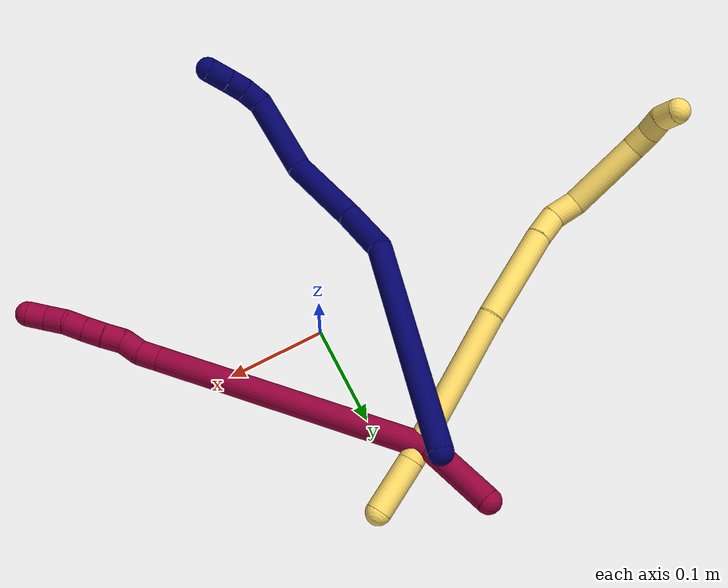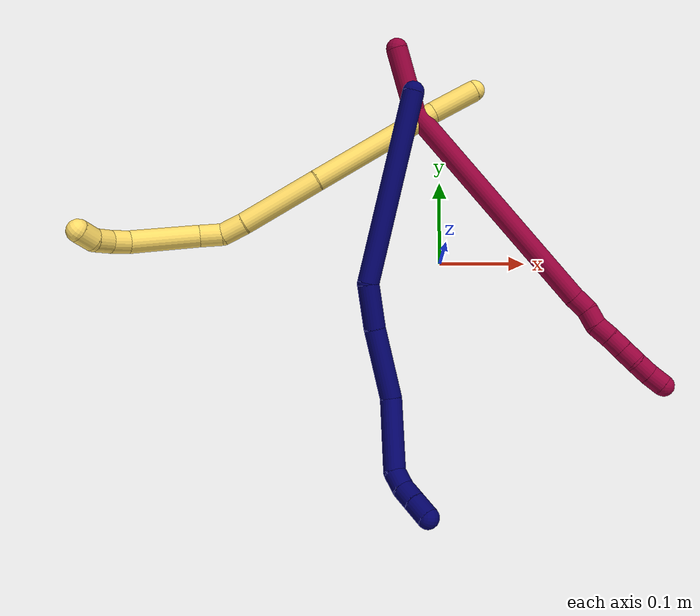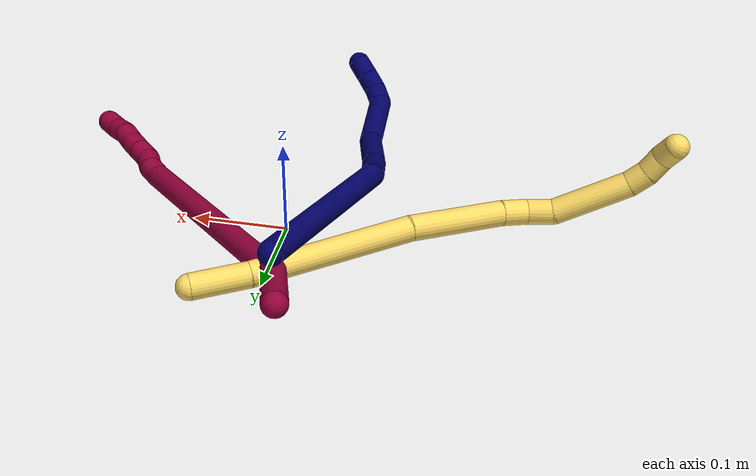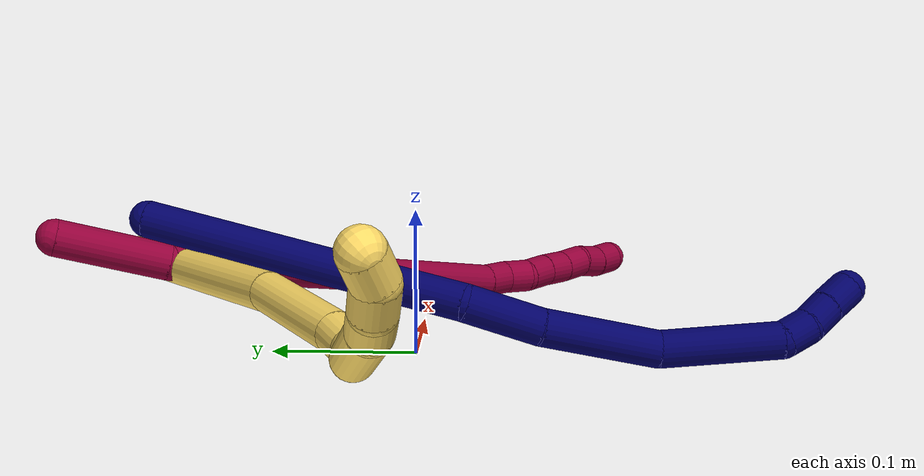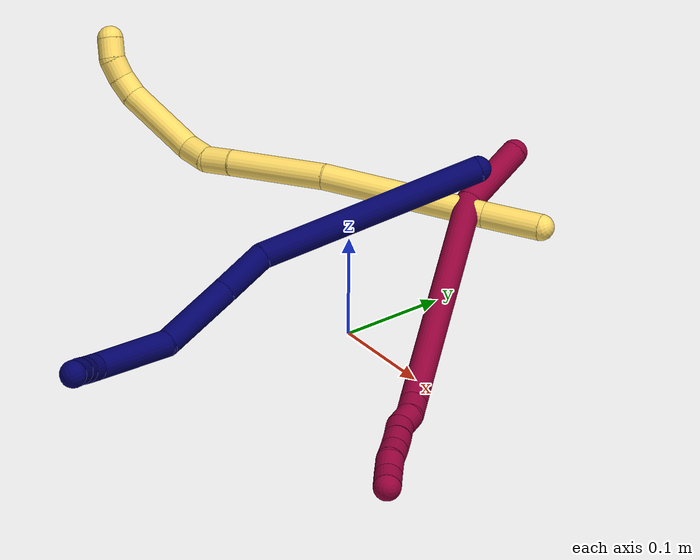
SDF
<sdf version="1.7">
 <world name="default">
  <model name="photoneo_s_sensor">
   <static>1</static>
   <pose>0 0 2 1.57079 1.57079 3.14159</pose>
   <link name="link">
    <inertial><mass>0.1</mass></inertial>
    <sensor name="sensor" type="depth">
     <update_rate>30</update_rate>
     <camera>
      <horizontal_fov>1.22</horizontal_fov>
      <image><width>1920</width><height>1200</height><format>B8G8R8</format></image>
      <clip><near>0.1</near><far>4</far></clip>
      <depth_camera><output>points</output></depth_camera>
     </camera>
     <plugin name="camera_plugin" filename="libgazebo_ros_depth_camera.so">
      <baseline>0.2</baseline>
      <alwaysOn>1</alwaysOn>
      <updateRate>0.0</updateRate>
      <cameraName>camera_ir</cameraName>
      <imageTopicName>/camera/color/image_raw</imageTopicName>
      <cameraInfoTopicName>/camera/color/camera_info</cameraInfoTopicName>
      <depthImageTopicName>/camera/depth/image_raw</depthImageTopicName>
      <depthImageCameraInfoTopicName>/camera/depth/camera_info</depthImageCameraInfoTopicName>
      <pointCloudTopicName>/camera/depth/points</pointCloudTopicName>
      <frameName>fr_optical</frameName>
      <pointCloudCutoff>0.1</pointCloudCutoff>
      <pointCloudCutoffMax>2.0</pointCloudCutoffMax>
      <distortionK1>0</distortionK1>
      <distortionK2>0</distortionK2>
      <distortionK3>0</distortionK3>
      <distortionT1>0</distortionT1>
      <distortionT2>0</distortionT2>
      <CxPrime>0</CxPrime>
      <Cx>0</Cx>
      <Cy>0</Cy>
      <focalLength>0</focalLength>
      <hackBaseline>0</hackBaseline>
     </plugin>
    </sensor>
   </link>
  </model>
  <model name="bin">
   <static>1</static>
   <link name="bottom">
    <collision name="collision-bottom">
     <pose>0 0 -0.01 0 -0 0</pose>
     <geometry><box><size>0.8 0.6 0.02</size></box></geometry>
     <surface>
      <friction><ode><mu>100</mu><mu2>100</mu2></ode></friction>
      <contact><collide_bitmask>65535</collide_bitmask></contact>
     </surface>
    </collision>
   </link>
   <link name="west_wall">
    <collision name="collision-west_wall">
     <pose>-0.41 0 0.1 0 -0 0</pose>
     <geometry><box><size>0.02 0.6 0.2</size></box></geometry>
     <surface>
      <friction><ode><mu>100</mu><mu2>100</mu2></ode></friction>
      <contact><collide_bitmask>65535</collide_bitmask></contact>
     </surface>
    </collision>
   </link>
   <link name="east_wall">
    <collision name="collision-east_wall">
     <pose>0.41 0 0.1 0 -0 0</pose>
     <geometry><box><size>0.02 0.6 0.2</size></box></geometry>
     <surface>
      <friction><ode><mu>100</mu><mu2>100</mu2></ode></friction>
      <contact><collide_bitmask>65535</collide_bitmask></contact>
     </surface>
    </collision>
   </link>
   <link name="south_wall">
    <collision name="collision-south_wall">
     <pose>0 -0.31 0.1 0 -0 0</pose>
     <geometry><box><size>0.8 0.02 0.2</size></box></geometry>
     <surface>
      <friction><ode><mu>100</mu><mu2>100</mu2></ode></friction>
      <contact><collide_bitmask>65535</collide_bitmask></contact>
     </surface>
    </collision>
   </link>
   <link name="north_wall">
    <collision name="collision-north_wall">
     <pose>0 0.31 0.1 0 -0 0</pose>
     <geometry><box><size>0.8 0.02 0.2</size></box></geometry>
     <surface>
      <friction><ode><mu>100</mu><mu2>100</mu2></ode></friction>
      <contact><collide_bitmask>65535</collide_bitmask></contact>
     </surface>
    </collision>
   </link>
  </model>
  <model name="5">
   <static>0</static>
   <link name="5">
    <collision name="collision-cylinder-e_1_1_4">
     <pose>-0.012069 -0.006325 -0.02455 2.88943 -0.444337 -2.11894</pose>
     <geometry><cylinder><radius>0.0125</radius><length>0.056156</length></cylinder></geometry>
     <surface>
      <friction><ode><mu>1.16</mu><mu2>1.16</mu2><slip1>0</slip1><slip2>0</slip2></ode></friction>
      <contact><ode><kp>1e+06</kp><kd>1</kd><max_vel>0</max_vel><min_depth>0.001</min_depth></ode></contact>
     </surface>
    </collision>
    <visual name="visual-cylinder-e_1_1_4">
     <pose>-0.012069 -0.006325 -0.02455 2.88943 -0.444337 -2.11894</pose>
     <geometry><cylinder><radius>0.0125</radius><length>0.056156</length></cylinder></geometry>
     <material><ambient>1 0.858824 0.4 1</ambient></material>
    </visual>
    <collision name="collision-cylinder-e_2_4_5">
     <pose>-0.057224 -0.036558 -0.117033 2.80319 -0.430649 -1.8154</pose>
     <geometry><cylinder><radius>0.0125</radius><length>0.158508</length></cylinder></geometry>
     <surface>
      <friction><ode><mu>1.16</mu><mu2>1.16</mu2><slip1>0</slip1><slip2>0</slip2></ode></friction>
      <contact><ode><kp>1e+06</kp><kd>1</kd><max_vel>0</max_vel><min_depth>0.001</min_depth></ode></contact>
     </surface>
    </collision>
    <visual name="visual-cylinder-e_2_4_5">
     <pose>-0.057224 -0.036558 -0.117033 2.80319 -0.430649 -1.8154</pose>
     <geometry><cylinder><radius>0.0125</radius><length>0.158508</length></cylinder></geometry>
     <material><ambient>1 0.858824 0.4 1</ambient></material>
    </visual>
    <collision name="collision-cylinder-e_3_5_6">
     <pose>-0.108166 -0.070092 -0.227711 2.9201 -0.386976 -2.10921</pose>
     <geometry><cylinder><radius>0.0125</radius><length>0.094628</length></cylinder></geometry>
     <surface>
      <friction><ode><mu>1.16</mu><mu2>1.16</mu2><slip1>0</slip1><slip2>0</slip2></ode></friction>
      <contact><ode><kp>1e+06</kp><kd>1</kd><max_vel>0</max_vel><min_depth>0.001</min_depth></ode></contact>
     </surface>
    </collision>
    <visual name="visual-cylinder-e_3_5_6">
     <pose>-0.108166 -0.070092 -0.227711 2.9201 -0.386976 -2.10921</pose>
     <geometry><cylinder><radius>0.0125</radius><length>0.094628</length></cylinder></geometry>
     <material><ambient>1 0.858824 0.4 1</ambient></material>
    </visual>
    <collision name="collision-cylinder-e_4_6_7">
     <pose>-0.131312 -0.081088 -0.282697 3.03008 -0.40567 -2.6116</pose>
     <geometry><cylinder><radius>0.0125</radius><length>0.026811</length></cylinder></geometry>
     <surface>
      <friction><ode><mu>1.16</mu><mu2>1.16</mu2><slip1>0</slip1><slip2>0</slip2></ode></friction>
      <contact><ode><kp>1e+06</kp><kd>1</kd><max_vel>0</max_vel><min_depth>0.001</min_depth></ode></contact>
     </surface>
    </collision>
    <visual name="visual-cylinder-e_4_6_7">
     <pose>-0.131312 -0.081088 -0.282697 3.03008 -0.40567 -2.6116</pose>
     <geometry><cylinder><radius>0.0125</radius><length>0.026811</length></cylinder></geometry>
     <material><ambient>1 0.858824 0.4 1</ambient></material>
    </visual>
    <collision name="collision-cylinder-e_5_7_8">
     <pose>-0.145942 -0.081909 -0.304041 -3.08126 -0.79732 2.99855</pose>
     <geometry><cylinder><radius>0.0125</radius><length>0.026107</length></cylinder></geometry>
     <surface>
      <friction><ode><mu>1.16</mu><mu2>1.16</mu2><slip1>0</slip1><slip2>0</slip2></ode></friction>
      <contact><ode><kp>1e+06</kp><kd>1</kd><max_vel>0</max_vel><min_depth>0.001</min_depth></ode></contact>
     </surface>
    </collision>
    <visual name="visual-cylinder-e_5_7_8">
     <pose>-0.145942 -0.081909 -0.304041 -3.08126 -0.79732 2.99855</pose>
     <geometry><cylinder><radius>0.0125</radius><length>0.026107</length></cylinder></geometry>
     <material><ambient>1 0.858824 0.4 1</ambient></material>
    </visual>
    <collision name="collision-cylinder-e_6_8_9">
     <pose>-0.185786 -0.092114 -0.333984 2.66519 -0.9154 -2.22563</pose>
     <geometry><cylinder><radius>0.0125</radius><length>0.076954</length></cylinder></geometry>
     <surface>
      <friction><ode><mu>1.16</mu><mu2>1.16</mu2><slip1>0</slip1><slip2>0</slip2></ode></friction>
      <contact><ode><kp>1e+06</kp><kd>1</kd><max_vel>0</max_vel><min_depth>0.001</min_depth></ode></contact>
     </surface>
    </collision>
    <visual name="visual-cylinder-e_6_8_9">
     <pose>-0.185786 -0.092114 -0.333984 2.66519 -0.9154 -2.22563</pose>
     <geometry><cylinder><radius>0.0125</radius><length>0.076954</length></cylinder></geometry>
     <material><ambient>1 0.858824 0.4 1</ambient></material>
    </visual>
    <collision name="collision-cylinder-e_7_9_10">
     <pose>-0.225154 -0.107193 -0.358134 2.22422 -1.01973 -1.6948</pose>
     <geometry><cylinder><radius>0.0125</radius><length>0.020807</length></cylinder></geometry>
     <surface>
      <friction><ode><mu>1.16</mu><mu2>1.16</mu2><slip1>0</slip1><slip2>0</slip2></ode></friction>
      <contact><ode><kp>1e+06</kp><kd>1</kd><max_vel>0</max_vel><min_depth>0.001</min_depth></ode></contact>
     </surface>
    </collision>
    <visual name="visual-cylinder-e_7_9_10">
     <pose>-0.225154 -0.107193 -0.358134 2.22422 -1.01973 -1.6948</pose>
     <geometry><cylinder><radius>0.0125</radius><length>0.020807</length></cylinder></geometry>
     <material><ambient>1 0.858824 0.4 1</ambient></material>
    </visual>
    <collision name="collision-cylinder-e_8_10_11">
     <pose>-0.242233 -0.117153 -0.362352 1.7303 -0.963667 -1.101</pose>
     <geometry><cylinder><radius>0.0125</radius><length>0.020007</length></cylinder></geometry>
     <surface>
      <friction><ode><mu>1.16</mu><mu2>1.16</mu2><slip1>0</slip1><slip2>0</slip2></ode></friction>
      <contact><ode><kp>1e+06</kp><kd>1</kd><max_vel>0</max_vel><min_depth>0.001</min_depth></ode></contact>
     </surface>
    </collision>
    <visual name="visual-cylinder-e_8_10_11">
     <pose>-0.242233 -0.117153 -0.362352 1.7303 -0.963667 -1.101</pose>
     <geometry><cylinder><radius>0.0125</radius><length>0.020007</length></cylinder></geometry>
     <material><ambient>1 0.858824 0.4 1</ambient></material>
    </visual>
    <collision name="collision-cylinder-e_9_11_2">
     <pose>-0.259965 -0.125474 -0.361693 1.04331 -1.25495 -0.789892</pose>
     <geometry><cylinder><radius>0.0125</radius><length>0.020022</length></cylinder></geometry>
     <surface>
      <friction><ode><mu>1.16</mu><mu2>1.16</mu2><slip1>0</slip1><slip2>0</slip2></ode></friction>
      <contact><ode><kp>1e+06</kp><kd>1</kd><max_vel>0</max_vel><min_depth>0.001</min_depth></ode></contact>
     </surface>
    </collision>
    <visual name="visual-cylinder-e_9_11_2">
     <pose>-0.259965 -0.125474 -0.361693 1.04331 -1.25495 -0.789892</pose>
     <geometry><cylinder><radius>0.0125</radius><length>0.020022</length></cylinder></geometry>
     <material><ambient>1 0.858824 0.4 1</ambient></material>
    </visual>
    <collision name="collision-sphere-2">
     <pose>-0.269481 -0.128161 -0.360128 0 -0 0</pose>
     <geometry><sphere><radius>0.0125</radius></sphere></geometry>
     <surface>
      <friction><ode><mu>1.16</mu><mu2>1.16</mu2><slip1>0</slip1><slip2>0</slip2></ode></friction>
      <contact><ode><kp>1e+06</kp><kd>1</kd><max_vel>0</max_vel><min_depth>0.001</min_depth></ode></contact>
     </surface>
    </collision>
    <visual name="visual-sphere-2">
     <pose>-0.269481 -0.128161 -0.360128 0 -0 0</pose>
     <geometry><sphere><radius>0.0125</radius></sphere></geometry>
     <material><ambient>1 0.858824 0.4 1</ambient></material>
    </visual>
    <collision name="collision-sphere-11">
     <pose>-0.250449 -0.122787 -0.363259 0 -0 0</pose>
     <geometry><sphere><radius>0.0125</radius></sphere></geometry>
     <surface>
      <friction><ode><mu>1.16</mu><mu2>1.16</mu2><slip1>0</slip1><slip2>0</slip2></ode></friction>
      <contact><ode><kp>1e+06</kp><kd>1</kd><max_vel>0</max_vel><min_depth>0.001</min_depth></ode></contact>
     </surface>
    </collision>
    <visual name="visual-sphere-11">
     <pose>-0.250449 -0.122787 -0.363259 0 -0 0</pose>
     <geometry><sphere><radius>0.0125</radius></sphere></geometry>
     <material><ambient>1 0.858824 0.4 1</ambient></material>
    </visual>
    <collision name="collision-sphere-10">
     <pose>-0.234018 -0.111518 -0.361446 0 -0 0</pose>
     <geometry><sphere><radius>0.0125</radius></sphere></geometry>
     <surface>
      <friction><ode><mu>1.16</mu><mu2>1.16</mu2><slip1>0</slip1><slip2>0</slip2></ode></friction>
      <contact><ode><kp>1e+06</kp><kd>1</kd><max_vel>0</max_vel><min_depth>0.001</min_depth></ode></contact>
     </surface>
    </collision>
    <visual name="visual-sphere-10">
     <pose>-0.234018 -0.111518 -0.361446 0 -0 0</pose>
     <geometry><sphere><radius>0.0125</radius></sphere></geometry>
     <material><ambient>1 0.858824 0.4 1</ambient></material>
    </visual>
    <collision name="collision-sphere-9">
     <pose>-0.216291 -0.102868 -0.354823 0 -0 0</pose>
     <geometry><sphere><radius>0.0125</radius></sphere></geometry>
     <surface>
      <friction><ode><mu>1.16</mu><mu2>1.16</mu2><slip1>0</slip1><slip2>0</slip2></ode></friction>
      <contact><ode><kp>1e+06</kp><kd>1</kd><max_vel>0</max_vel><min_depth>0.001</min_depth></ode></contact>
     </surface>
    </collision>
    <visual name="visual-sphere-9">
     <pose>-0.216291 -0.102868 -0.354823 0 -0 0</pose>
     <geometry><sphere><radius>0.0125</radius></sphere></geometry>
     <material><ambient>1 0.858824 0.4 1</ambient></material>
    </visual>
    <collision name="collision-sphere-4">
     <pose>-0.024139 -0.01265 -0.049099 0 -0 0</pose>
     <geometry><sphere><radius>0.0125</radius></sphere></geometry>
     <surface>
      <friction><ode><mu>1.16</mu><mu2>1.16</mu2><slip1>0</slip1><slip2>0</slip2></ode></friction>
      <contact><ode><kp>1e+06</kp><kd>1</kd><max_vel>0</max_vel><min_depth>0.001</min_depth></ode></contact>
     </surface>
    </collision>
    <visual name="visual-sphere-4">
     <pose>-0.024139 -0.01265 -0.049099 0 -0 0</pose>
     <geometry><sphere><radius>0.0125</radius></sphere></geometry>
     <material><ambient>1 0.858824 0.4 1</ambient></material>
    </visual>
    <collision name="collision-sphere-1">
     <geometry><sphere><radius>0.0125</radius></sphere></geometry>
     <surface>
      <friction><ode><mu>1.16</mu><mu2>1.16</mu2><slip1>0</slip1><slip2>0</slip2></ode></friction>
      <contact><ode><kp>1e+06</kp><kd>1</kd><max_vel>0</max_vel><min_depth>0.001</min_depth></ode></contact>
     </surface>
    </collision>
    <visual name="visual-sphere-1">
     <geometry><sphere><radius>0.0125</radius></sphere></geometry>
     <material><ambient>1 0.858824 0.4 1</ambient></material>
    </visual>
    <collision name="collision-sphere-8">
     <pose>-0.155281 -0.081359 -0.313144 0 -0 0</pose>
     <geometry><sphere><radius>0.0125</radius></sphere></geometry>
     <surface>
      <friction><ode><mu>1.16</mu><mu2>1.16</mu2><slip1>0</slip1><slip2>0</slip2></ode></friction>
      <contact><ode><kp>1e+06</kp><kd>1</kd><max_vel>0</max_vel><min_depth>0.001</min_depth></ode></contact>
     </surface>
    </collision>
    <visual name="visual-sphere-8">
     <pose>-0.155281 -0.081359 -0.313144 0 -0 0</pose>
     <geometry><sphere><radius>0.0125</radius></sphere></geometry>
     <material><ambient>1 0.858824 0.4 1</ambient></material>
    </visual>
    <collision name="collision-sphere-5">
     <pose>-0.09031 -0.060467 -0.184966 0 -0 0</pose>
     <geometry><sphere><radius>0.0125</radius></sphere></geometry>
     <surface>
      <friction><ode><mu>1.16</mu><mu2>1.16</mu2><slip1>0</slip1><slip2>0</slip2></ode></friction>
      <contact><ode><kp>1e+06</kp><kd>1</kd><max_vel>0</max_vel><min_depth>0.001</min_depth></ode></contact>
     </surface>
    </collision>
    <visual name="visual-sphere-5">
     <pose>-0.09031 -0.060467 -0.184966 0 -0 0</pose>
     <geometry><sphere><radius>0.0125</radius></sphere></geometry>
     <material><ambient>1 0.858824 0.4 1</ambient></material>
    </visual>
    <collision name="collision-sphere-6">
     <pose>-0.126022 -0.079718 -0.270456 0 -0 0</pose>
     <geometry><sphere><radius>0.0125</radius></sphere></geometry>
     <surface>
      <friction><ode><mu>1.16</mu><mu2>1.16</mu2><slip1>0</slip1><slip2>0</slip2></ode></friction>
      <contact><ode><kp>1e+06</kp><kd>1</kd><max_vel>0</max_vel><min_depth>0.001</min_depth></ode></contact>
     </surface>
    </collision>
    <visual name="visual-sphere-6">
     <pose>-0.126022 -0.079718 -0.270456 0 -0 0</pose>
     <geometry><sphere><radius>0.0125</radius></sphere></geometry>
     <material><ambient>1 0.858824 0.4 1</ambient></material>
    </visual>
    <collision name="collision-sphere-7">
     <pose>-0.136602 -0.082459 -0.294938 0 -0 0</pose>
     <geometry><sphere><radius>0.0125</radius></sphere></geometry>
     <surface>
      <friction><ode><mu>1.16</mu><mu2>1.16</mu2><slip1>0</slip1><slip2>0</slip2></ode></friction>
      <contact><ode><kp>1e+06</kp><kd>1</kd><max_vel>0</max_vel><min_depth>0.001</min_depth></ode></contact>
     </surface>
    </collision>
    <visual name="visual-sphere-7">
     <pose>-0.136602 -0.082459 -0.294938 0 -0 0</pose>
     <geometry><sphere><radius>0.0125</radius></sphere></geometry>
     <material><ambient>1 0.858824 0.4 1</ambient></material>
    </visual>
    <inertial>
     <pose>-0.112695 -0.06254 -0.209277 0 -0 0</pose>
     <mass>0.5</mass>
     <inertia>
      <ixx>-0.00055</ixx>
      <ixy>0</ixy>
      <ixz>0</ixz>
      <iyy>-0.000185</iyy>
      <iyz>0</iyz>
      <izz>0.000322</izz>
     </inertia>
    </inertial>
   </link>
   <pose>0.03741 0.193163 0.06335 -0.990582 0.614489 -0.50099</pose>
  </model>
  <model name="7">
   <static>0</static>
   <link name="7">
    <collision name="collision-cylinder-e_1_1_4">
     <pose>0.034962 -0.104996 -0.006233 1.63009 0.320905 0.340153</pose>
     <geometry><cylinder><radius>0.0125</radius><length>0.221679</length></cylinder></geometry>
     <surface>
      <friction><ode><mu>1.16</mu><mu2>1.16</mu2><slip1>0</slip1><slip2>0</slip2></ode></friction>
      <contact><ode><kp>1e+06</kp><kd>1</kd><max_vel>0</max_vel><min_depth>0.001</min_depth></ode></contact>
     </surface>
    </collision>
    <visual name="visual-cylinder-e_1_1_4">
     <pose>0.034962 -0.104996 -0.006233 1.63009 0.320905 0.340153</pose>
     <geometry><cylinder><radius>0.0125</radius><length>0.221679</length></cylinder></geometry>
     <material><ambient>0.003922 0 0.403922 1</ambient></material>
    </visual>
    <collision name="collision-cylinder-e_2_4_5">
     <pose>0.075541 -0.233902 -0.004017 1.23114 0.218019 0.154499</pose>
     <geometry><cylinder><radius>0.0125</radius><length>0.051947</length></cylinder></geometry>
     <surface>
      <friction><ode><mu>1.16</mu><mu2>1.16</mu2><slip1>0</slip1><slip2>0</slip2></ode></friction>
      <contact><ode><kp>1e+06</kp><kd>1</kd><max_vel>0</max_vel><min_depth>0.001</min_depth></ode></contact>
     </surface>
    </collision>
    <visual name="visual-cylinder-e_2_4_5">
     <pose>0.075541 -0.233902 -0.004017 1.23114 0.218019 0.154499</pose>
     <geometry><cylinder><radius>0.0125</radius><length>0.051947</length></cylinder></geometry>
     <material><ambient>0.003922 0 0.403922 1</ambient></material>
    </visual>
    <collision name="collision-cylinder-e_3_5_6">
     <pose>0.084639 -0.295786 0.018181 1.22342 0.085951 0.060311</pose>
     <geometry><cylinder><radius>0.0125</radius><length>0.081072</length></cylinder></geometry>
     <surface>
      <friction><ode><mu>1.16</mu><mu2>1.16</mu2><slip1>0</slip1><slip2>0</slip2></ode></friction>
      <contact><ode><kp>1e+06</kp><kd>1</kd><max_vel>0</max_vel><min_depth>0.001</min_depth></ode></contact>
     </surface>
    </collision>
    <visual name="visual-cylinder-e_3_5_6">
     <pose>0.084639 -0.295786 0.018181 1.22342 0.085951 0.060311</pose>
     <geometry><cylinder><radius>0.0125</radius><length>0.081072</length></cylinder></geometry>
     <material><ambient>0.003922 0 0.403922 1</ambient></material>
    </visual>
    <collision name="collision-cylinder-e_4_6_7">
     <pose>0.085589 -0.374093 0.032763 1.55015 -0.062615 -0.061336</pose>
     <geometry><cylinder><radius>0.0125</radius><length>0.080842</length></cylinder></geometry>
     <surface>
      <friction><ode><mu>1.16</mu><mu2>1.16</mu2><slip1>0</slip1><slip2>0</slip2></ode></friction>
      <contact><ode><kp>1e+06</kp><kd>1</kd><max_vel>0</max_vel><min_depth>0.001</min_depth></ode></contact>
     </surface>
    </collision>
    <visual name="visual-cylinder-e_4_6_7">
     <pose>0.085589 -0.374093 0.032763 1.55015 -0.062615 -0.061336</pose>
     <geometry><cylinder><radius>0.0125</radius><length>0.080842</length></cylinder></geometry>
     <material><ambient>0.003922 0 0.403922 1</ambient></material>
    </visual>
    <collision name="collision-cylinder-e_5_7_8">
     <pose>0.077607 -0.423145 0.035479 1.35809 -0.548657 -0.446685</pose>
     <geometry><cylinder><radius>0.0125</radius><length>0.02091</length></cylinder></geometry>
     <surface>
      <friction><ode><mu>1.16</mu><mu2>1.16</mu2><slip1>0</slip1><slip2>0</slip2></ode></friction>
      <contact><ode><kp>1e+06</kp><kd>1</kd><max_vel>0</max_vel><min_depth>0.001</min_depth></ode></contact>
     </surface>
    </collision>
    <visual name="visual-cylinder-e_5_7_8">
     <pose>0.077607 -0.423145 0.035479 1.35809 -0.548657 -0.446685</pose>
     <geometry><cylinder><radius>0.0125</radius><length>0.02091</length></cylinder></geometry>
     <material><ambient>0.003922 0 0.403922 1</ambient></material>
    </visual>
    <collision name="collision-cylinder-e_6_8_9">
     <pose>0.065022 -0.438731 0.039702 1.24232 -0.776911 -0.569833</pose>
     <geometry><cylinder><radius>0.0125</radius><length>0.020346</length></cylinder></geometry>
     <surface>
      <friction><ode><mu>1.16</mu><mu2>1.16</mu2><slip1>0</slip1><slip2>0</slip2></ode></friction>
      <contact><ode><kp>1e+06</kp><kd>1</kd><max_vel>0</max_vel><min_depth>0.001</min_depth></ode></contact>
     </surface>
    </collision>
    <visual name="visual-cylinder-e_6_8_9">
     <pose>0.065022 -0.438731 0.039702 1.24232 -0.776911 -0.569833</pose>
     <geometry><cylinder><radius>0.0125</radius><length>0.020346</length></cylinder></geometry>
     <material><ambient>0.003922 0 0.403922 1</ambient></material>
    </visual>
    <collision name="collision-cylinder-e_7_9_2">
     <pose>0.050131 -0.453634 0.045179 1.19871 -0.732526 -0.512577</pose>
     <geometry><cylinder><radius>0.0125</radius><length>0.023205</length></cylinder></geometry>
     <surface>
      <friction><ode><mu>1.16</mu><mu2>1.16</mu2><slip1>0</slip1><slip2>0</slip2></ode></friction>
      <contact><ode><kp>1e+06</kp><kd>1</kd><max_vel>0</max_vel><min_depth>0.001</min_depth></ode></contact>
     </surface>
    </collision>
    <visual name="visual-cylinder-e_7_9_2">
     <pose>0.050131 -0.453634 0.045179 1.19871 -0.732526 -0.512577</pose>
     <geometry><cylinder><radius>0.0125</radius><length>0.023205</length></cylinder></geometry>
     <material><ambient>0.003922 0 0.403922 1</ambient></material>
    </visual>
    <collision name="collision-sphere-2">
     <pose>0.042372 -0.46167 0.048315 0 -0 0</pose>
     <geometry><sphere><radius>0.0125</radius></sphere></geometry>
     <surface>
      <friction><ode><mu>1.16</mu><mu2>1.16</mu2><slip1>0</slip1><slip2>0</slip2></ode></friction>
      <contact><ode><kp>1e+06</kp><kd>1</kd><max_vel>0</max_vel><min_depth>0.001</min_depth></ode></contact>
     </surface>
    </collision>
    <visual name="visual-sphere-2">
     <pose>0.042372 -0.46167 0.048315 0 -0 0</pose>
     <geometry><sphere><radius>0.0125</radius></sphere></geometry>
     <material><ambient>0.003922 0 0.403922 1</ambient></material>
    </visual>
    <collision name="collision-sphere-9">
     <pose>0.05789 -0.445598 0.042043 0 -0 0</pose>
     <geometry><sphere><radius>0.0125</radius></sphere></geometry>
     <surface>
      <friction><ode><mu>1.16</mu><mu2>1.16</mu2><slip1>0</slip1><slip2>0</slip2></ode></friction>
      <contact><ode><kp>1e+06</kp><kd>1</kd><max_vel>0</max_vel><min_depth>0.001</min_depth></ode></contact>
     </surface>
    </collision>
    <visual name="visual-sphere-9">
     <pose>0.05789 -0.445598 0.042043 0 -0 0</pose>
     <geometry><sphere><radius>0.0125</radius></sphere></geometry>
     <material><ambient>0.003922 0 0.403922 1</ambient></material>
    </visual>
    <collision name="collision-sphere-4">
     <pose>0.069923 -0.209992 -0.012465 0 -0 0</pose>
     <geometry><sphere><radius>0.0125</radius></sphere></geometry>
     <surface>
      <friction><ode><mu>1.16</mu><mu2>1.16</mu2><slip1>0</slip1><slip2>0</slip2></ode></friction>
      <contact><ode><kp>1e+06</kp><kd>1</kd><max_vel>0</max_vel><min_depth>0.001</min_depth></ode></contact>
     </surface>
    </collision>
    <visual name="visual-sphere-4">
     <pose>0.069923 -0.209992 -0.012465 0 -0 0</pose>
     <geometry><sphere><radius>0.0125</radius></sphere></geometry>
     <material><ambient>0.003922 0 0.403922 1</ambient></material>
    </visual>
    <collision name="collision-sphere-1">
     <geometry><sphere><radius>0.0125</radius></sphere></geometry>
     <surface>
      <friction><ode><mu>1.16</mu><mu2>1.16</mu2><slip1>0</slip1><slip2>0</slip2></ode></friction>
      <contact><ode><kp>1e+06</kp><kd>1</kd><max_vel>0</max_vel><min_depth>0.001</min_depth></ode></contact>
     </surface>
    </collision>
    <visual name="visual-sphere-1">
     <geometry><sphere><radius>0.0125</radius></sphere></geometry>
     <material><ambient>0.003922 0 0.403922 1</ambient></material>
    </visual>
    <collision name="collision-sphere-8">
     <pose>0.072155 -0.431865 0.037362 0 -0 0</pose>
     <geometry><sphere><radius>0.0125</radius></sphere></geometry>
     <surface>
      <friction><ode><mu>1.16</mu><mu2>1.16</mu2><slip1>0</slip1><slip2>0</slip2></ode></friction>
      <contact><ode><kp>1e+06</kp><kd>1</kd><max_vel>0</max_vel><min_depth>0.001</min_depth></ode></contact>
     </surface>
    </collision>
    <visual name="visual-sphere-8">
     <pose>0.072155 -0.431865 0.037362 0 -0 0</pose>
     <geometry><sphere><radius>0.0125</radius></sphere></geometry>
     <material><ambient>0.003922 0 0.403922 1</ambient></material>
    </visual>
    <collision name="collision-sphere-5">
     <pose>0.081159 -0.257812 0.004432 0 -0 0</pose>
     <geometry><sphere><radius>0.0125</radius></sphere></geometry>
     <surface>
      <friction><ode><mu>1.16</mu><mu2>1.16</mu2><slip1>0</slip1><slip2>0</slip2></ode></friction>
      <contact><ode><kp>1e+06</kp><kd>1</kd><max_vel>0</max_vel><min_depth>0.001</min_depth></ode></contact>
     </surface>
    </collision>
    <visual name="visual-sphere-5">
     <pose>0.081159 -0.257812 0.004432 0 -0 0</pose>
     <geometry><sphere><radius>0.0125</radius></sphere></geometry>
     <material><ambient>0.003922 0 0.403922 1</ambient></material>
    </visual>
    <collision name="collision-sphere-6">
     <pose>0.088119 -0.33376 0.03193 0 -0 0</pose>
     <geometry><sphere><radius>0.0125</radius></sphere></geometry>
     <surface>
      <friction><ode><mu>1.16</mu><mu2>1.16</mu2><slip1>0</slip1><slip2>0</slip2></ode></friction>
      <contact><ode><kp>1e+06</kp><kd>1</kd><max_vel>0</max_vel><min_depth>0.001</min_depth></ode></contact>
     </surface>
    </collision>
    <visual name="visual-sphere-6">
     <pose>0.088119 -0.33376 0.03193 0 -0 0</pose>
     <geometry><sphere><radius>0.0125</radius></sphere></geometry>
     <material><ambient>0.003922 0 0.403922 1</ambient></material>
    </visual>
    <collision name="collision-sphere-7">
     <pose>0.08306 -0.414426 0.033596 0 -0 0</pose>
     <geometry><sphere><radius>0.0125</radius></sphere></geometry>
     <surface>
      <friction><ode><mu>1.16</mu><mu2>1.16</mu2><slip1>0</slip1><slip2>0</slip2></ode></friction>
      <contact><ode><kp>1e+06</kp><kd>1</kd><max_vel>0</max_vel><min_depth>0.001</min_depth></ode></contact>
     </surface>
    </collision>
    <visual name="visual-sphere-7">
     <pose>0.08306 -0.414426 0.033596 0 -0 0</pose>
     <geometry><sphere><radius>0.0125</radius></sphere></geometry>
     <material><ambient>0.003922 0 0.403922 1</ambient></material>
    </visual>
    <inertial>
     <pose>0.059129 -0.235898 0.010261 0 -0 0</pose>
     <mass>0.5</mass>
     <inertia>
      <ixx>0.001224</ixx>
      <ixy>0</ixy>
      <ixz>0</ixz>
      <iyy>0.000325</iyy>
      <iyz>0</iyz>
      <izz>0.00069</izz>
     </inertia>
    </inertial>
   </link>
   <pose>-0.034779 0.175024 0.098513 -3.08018 0.970019 -3.09016</pose>
  </model>
  <model name="8">
   <static>0</static>
   <link name="8">
    <collision name="collision-cylinder-e_1_1_4">
     <pose>-0.015359 -0.031878 0.013649 1.16626 -0.416939 -0.277299</pose>
     <geometry><cylinder><radius>0.0125</radius><length>0.075852</length></cylinder></geometry>
     <surface>
      <friction><ode><mu>1.16</mu><mu2>1.16</mu2><slip1>0</slip1><slip2>0</slip2></ode></friction>
      <contact><ode><kp>1e+06</kp><kd>1</kd><max_vel>0</max_vel><min_depth>0.001</min_depth></ode></contact>
     </surface>
    </collision>
    <visual name="visual-cylinder-e_1_1_4">
     <pose>-0.015359 -0.031878 0.013649 1.16626 -0.416939 -0.277299</pose>
     <geometry><cylinder><radius>0.0125</radius><length>0.075852</length></cylinder></geometry>
     <material><ambient>0.584314 0 0.227451 1</ambient></material>
    </visual>
    <collision name="collision-cylinder-e_2_4_5">
     <pose>-0.052486 -0.163661 0.12474 0.797868 -0.154735 -0.065334</pose>
     <geometry><cylinder><radius>0.0125</radius><length>0.282489</length></cylinder></geometry>
     <surface>
      <friction><ode><mu>1.16</mu><mu2>1.16</mu2><slip1>0</slip1><slip2>0</slip2></ode></friction>
      <contact><ode><kp>1e+06</kp><kd>1</kd><max_vel>0</max_vel><min_depth>0.001</min_depth></ode></contact>
     </surface>
    </collision>
    <visual name="visual-cylinder-e_2_4_5">
     <pose>-0.052486 -0.163661 0.12474 0.797868 -0.154735 -0.065334</pose>
     <geometry><cylinder><radius>0.0125</radius><length>0.282489</length></cylinder></geometry>
     <material><ambient>0.584314 0 0.227451 1</ambient></material>
    </visual>
    <collision name="collision-cylinder-e_3_5_6">
     <pose>-0.076608 -0.269553 0.230533 0.622206 -0.225203 -0.072688</pose>
     <geometry><cylinder><radius>0.0125</radius><length>0.021081</length></cylinder></geometry>
     <surface>
      <friction><ode><mu>1.16</mu><mu2>1.16</mu2><slip1>0</slip1><slip2>0</slip2></ode></friction>
      <contact><ode><kp>1e+06</kp><kd>1</kd><max_vel>0</max_vel><min_depth>0.001</min_depth></ode></contact>
     </surface>
    </collision>
    <visual name="visual-cylinder-e_3_5_6">
     <pose>-0.076608 -0.269553 0.230533 0.622206 -0.225203 -0.072688</pose>
     <geometry><cylinder><radius>0.0125</radius><length>0.021081</length></cylinder></geometry>
     <material><ambient>0.584314 0 0.227451 1</ambient></material>
    </visual>
    <collision name="collision-cylinder-e_4_6_7">
     <pose>-0.083423 -0.282255 0.244974 0.833837 -0.457355 -0.205435</pose>
     <geometry><cylinder><radius>0.0125</radius><length>0.020208</length></cylinder></geometry>
     <surface>
      <friction><ode><mu>1.16</mu><mu2>1.16</mu2><slip1>0</slip1><slip2>0</slip2></ode></friction>
      <contact><ode><kp>1e+06</kp><kd>1</kd><max_vel>0</max_vel><min_depth>0.001</min_depth></ode></contact>
     </surface>
    </collision>
    <visual name="visual-cylinder-e_4_6_7">
     <pose>-0.083423 -0.282255 0.244974 0.833837 -0.457355 -0.205435</pose>
     <geometry><cylinder><radius>0.0125</radius><length>0.020208</length></cylinder></geometry>
     <material><ambient>0.584314 0 0.227451 1</ambient></material>
    </visual>
    <collision name="collision-cylinder-e_5_7_8">
     <pose>-0.090142 -0.294004 0.259528 0.53685 -0.225307 -0.062217</pose>
     <geometry><cylinder><radius>0.0125</radius><length>0.020204</length></cylinder></geometry>
     <surface>
      <friction><ode><mu>1.16</mu><mu2>1.16</mu2><slip1>0</slip1><slip2>0</slip2></ode></friction>
      <contact><ode><kp>1e+06</kp><kd>1</kd><max_vel>0</max_vel><min_depth>0.001</min_depth></ode></contact>
     </surface>
    </collision>
    <visual name="visual-cylinder-e_5_7_8">
     <pose>-0.090142 -0.294004 0.259528 0.53685 -0.225307 -0.062217</pose>
     <geometry><cylinder><radius>0.0125</radius><length>0.020204</length></cylinder></geometry>
     <material><ambient>0.584314 0 0.227451 1</ambient></material>
    </visual>
    <collision name="collision-cylinder-e_6_8_9">
     <pose>-0.094767 -0.304735 0.275945 0.621339 -0.237471 -0.076567</pose>
     <geometry><cylinder><radius>0.0125</radius><length>0.020134</length></cylinder></geometry>
     <surface>
      <friction><ode><mu>1.16</mu><mu2>1.16</mu2><slip1>0</slip1><slip2>0</slip2></ode></friction>
      <contact><ode><kp>1e+06</kp><kd>1</kd><max_vel>0</max_vel><min_depth>0.001</min_depth></ode></contact>
     </surface>
    </collision>
    <visual name="visual-cylinder-e_6_8_9">
     <pose>-0.094767 -0.304735 0.275945 0.621339 -0.237471 -0.076567</pose>
     <geometry><cylinder><radius>0.0125</radius><length>0.020134</length></cylinder></geometry>
     <material><ambient>0.584314 0 0.227451 1</ambient></material>
    </visual>
    <collision name="collision-cylinder-e_7_9_10">
     <pose>-0.100141 -0.315411 0.29204 0.54907 -0.305271 -0.086598</pose>
     <geometry><cylinder><radius>0.0125</radius><length>0.020007</length></cylinder></geometry>
     <surface>
      <friction><ode><mu>1.16</mu><mu2>1.16</mu2><slip1>0</slip1><slip2>0</slip2></ode></friction>
      <contact><ode><kp>1e+06</kp><kd>1</kd><max_vel>0</max_vel><min_depth>0.001</min_depth></ode></contact>
     </surface>
    </collision>
    <visual name="visual-cylinder-e_7_9_10">
     <pose>-0.100141 -0.315411 0.29204 0.54907 -0.305271 -0.086598</pose>
     <geometry><cylinder><radius>0.0125</radius><length>0.020007</length></cylinder></geometry>
     <material><ambient>0.584314 0 0.227451 1</ambient></material>
    </visual>
    <collision name="collision-cylinder-e_8_10_11">
     <pose>-0.10394 -0.326939 0.307703 0.716174 -0.079245 -0.029669</pose>
     <geometry><cylinder><radius>0.0125</radius><length>0.020015</length></cylinder></geometry>
     <surface>
      <friction><ode><mu>1.16</mu><mu2>1.16</mu2><slip1>0</slip1><slip2>0</slip2></ode></friction>
      <contact><ode><kp>1e+06</kp><kd>1</kd><max_vel>0</max_vel><min_depth>0.001</min_depth></ode></contact>
     </surface>
    </collision>
    <visual name="visual-cylinder-e_8_10_11">
     <pose>-0.10394 -0.326939 0.307703 0.716174 -0.079245 -0.029669</pose>
     <geometry><cylinder><radius>0.0125</radius><length>0.020015</length></cylinder></geometry>
     <material><ambient>0.584314 0 0.227451 1</ambient></material>
    </visual>
    <collision name="collision-cylinder-e_9_11_2">
     <pose>-0.106321 -0.33852 0.323729 0.534398 -0.159455 -0.043736</pose>
     <geometry><cylinder><radius>0.0125</radius><length>0.02001</length></cylinder></geometry>
     <surface>
      <friction><ode><mu>1.16</mu><mu2>1.16</mu2><slip1>0</slip1><slip2>0</slip2></ode></friction>
      <contact><ode><kp>1e+06</kp><kd>1</kd><max_vel>0</max_vel><min_depth>0.001</min_depth></ode></contact>
     </surface>
    </collision>
    <visual name="visual-cylinder-e_9_11_2">
     <pose>-0.106321 -0.33852 0.323729 0.534398 -0.159455 -0.043736</pose>
     <geometry><cylinder><radius>0.0125</radius><length>0.02001</length></cylinder></geometry>
     <material><ambient>0.584314 0 0.227451 1</ambient></material>
    </visual>
    <collision name="collision-sphere-2">
     <pose>-0.10791 -0.343551 0.33223 0 -0 0</pose>
     <geometry><sphere><radius>0.0125</radius></sphere></geometry>
     <surface>
      <friction><ode><mu>1.16</mu><mu2>1.16</mu2><slip1>0</slip1><slip2>0</slip2></ode></friction>
      <contact><ode><kp>1e+06</kp><kd>1</kd><max_vel>0</max_vel><min_depth>0.001</min_depth></ode></contact>
     </surface>
    </collision>
    <visual name="visual-sphere-2">
     <pose>-0.10791 -0.343551 0.33223 0 -0 0</pose>
     <geometry><sphere><radius>0.0125</radius></sphere></geometry>
     <material><ambient>0.584314 0 0.227451 1</ambient></material>
    </visual>
    <collision name="collision-sphere-11">
     <pose>-0.104732 -0.333489 0.315228 0 -0 0</pose>
     <geometry><sphere><radius>0.0125</radius></sphere></geometry>
     <surface>
      <friction><ode><mu>1.16</mu><mu2>1.16</mu2><slip1>0</slip1><slip2>0</slip2></ode></friction>
      <contact><ode><kp>1e+06</kp><kd>1</kd><max_vel>0</max_vel><min_depth>0.001</min_depth></ode></contact>
     </surface>
    </collision>
    <visual name="visual-sphere-11">
     <pose>-0.104732 -0.333489 0.315228 0 -0 0</pose>
     <geometry><sphere><radius>0.0125</radius></sphere></geometry>
     <material><ambient>0.584314 0 0.227451 1</ambient></material>
    </visual>
    <collision name="collision-sphere-10">
     <pose>-0.103148 -0.32039 0.300178 0 -0 0</pose>
     <geometry><sphere><radius>0.0125</radius></sphere></geometry>
     <surface>
      <friction><ode><mu>1.16</mu><mu2>1.16</mu2><slip1>0</slip1><slip2>0</slip2></ode></friction>
      <contact><ode><kp>1e+06</kp><kd>1</kd><max_vel>0</max_vel><min_depth>0.001</min_depth></ode></contact>
     </surface>
    </collision>
    <visual name="visual-sphere-10">
     <pose>-0.103148 -0.32039 0.300178 0 -0 0</pose>
     <geometry><sphere><radius>0.0125</radius></sphere></geometry>
     <material><ambient>0.584314 0 0.227451 1</ambient></material>
    </visual>
    <collision name="collision-sphere-9">
     <pose>-0.097135 -0.310431 0.283901 0 -0 0</pose>
     <geometry><sphere><radius>0.0125</radius></sphere></geometry>
     <surface>
      <friction><ode><mu>1.16</mu><mu2>1.16</mu2><slip1>0</slip1><slip2>0</slip2></ode></friction>
      <contact><ode><kp>1e+06</kp><kd>1</kd><max_vel>0</max_vel><min_depth>0.001</min_depth></ode></contact>
     </surface>
    </collision>
    <visual name="visual-sphere-9">
     <pose>-0.097135 -0.310431 0.283901 0 -0 0</pose>
     <geometry><sphere><radius>0.0125</radius></sphere></geometry>
     <material><ambient>0.584314 0 0.227451 1</ambient></material>
    </visual>
    <collision name="collision-sphere-4">
     <pose>-0.030717 -0.063756 0.027297 0 -0 0</pose>
     <geometry><sphere><radius>0.0125</radius></sphere></geometry>
     <surface>
      <friction><ode><mu>1.16</mu><mu2>1.16</mu2><slip1>0</slip1><slip2>0</slip2></ode></friction>
      <contact><ode><kp>1e+06</kp><kd>1</kd><max_vel>0</max_vel><min_depth>0.001</min_depth></ode></contact>
     </surface>
    </collision>
    <visual name="visual-sphere-4">
     <pose>-0.030717 -0.063756 0.027297 0 -0 0</pose>
     <geometry><sphere><radius>0.0125</radius></sphere></geometry>
     <material><ambient>0.584314 0 0.227451 1</ambient></material>
    </visual>
    <collision name="collision-sphere-1">
     <geometry><sphere><radius>0.0125</radius></sphere></geometry>
     <surface>
      <friction><ode><mu>1.16</mu><mu2>1.16</mu2><slip1>0</slip1><slip2>0</slip2></ode></friction>
      <contact><ode><kp>1e+06</kp><kd>1</kd><max_vel>0</max_vel><min_depth>0.001</min_depth></ode></contact>
     </surface>
    </collision>
    <visual name="visual-sphere-1">
     <geometry><sphere><radius>0.0125</radius></sphere></geometry>
     <material><ambient>0.584314 0 0.227451 1</ambient></material>
    </visual>
    <collision name="collision-sphere-8">
     <pose>-0.092399 -0.29904 0.26799 0 -0 0</pose>
     <geometry><sphere><radius>0.0125</radius></sphere></geometry>
     <surface>
      <friction><ode><mu>1.16</mu><mu2>1.16</mu2><slip1>0</slip1><slip2>0</slip2></ode></friction>
      <contact><ode><kp>1e+06</kp><kd>1</kd><max_vel>0</max_vel><min_depth>0.001</min_depth></ode></contact>
     </surface>
    </collision>
    <visual name="visual-sphere-8">
     <pose>-0.092399 -0.29904 0.26799 0 -0 0</pose>
     <geometry><sphere><radius>0.0125</radius></sphere></geometry>
     <material><ambient>0.584314 0 0.227451 1</ambient></material>
    </visual>
    <collision name="collision-sphere-5">
     <pose>-0.074254 -0.263565 0.222184 0 -0 0</pose>
     <geometry><sphere><radius>0.0125</radius></sphere></geometry>
     <surface>
      <friction><ode><mu>1.16</mu><mu2>1.16</mu2><slip1>0</slip1><slip2>0</slip2></ode></friction>
      <contact><ode><kp>1e+06</kp><kd>1</kd><max_vel>0</max_vel><min_depth>0.001</min_depth></ode></contact>
     </surface>
    </collision>
    <visual name="visual-sphere-5">
     <pose>-0.074254 -0.263565 0.222184 0 -0 0</pose>
     <geometry><sphere><radius>0.0125</radius></sphere></geometry>
     <material><ambient>0.584314 0 0.227451 1</ambient></material>
    </visual>
    <collision name="collision-sphere-6">
     <pose>-0.078961 -0.275541 0.238882 0 -0 0</pose>
     <geometry><sphere><radius>0.0125</radius></sphere></geometry>
     <surface>
      <friction><ode><mu>1.16</mu><mu2>1.16</mu2><slip1>0</slip1><slip2>0</slip2></ode></friction>
      <contact><ode><kp>1e+06</kp><kd>1</kd><max_vel>0</max_vel><min_depth>0.001</min_depth></ode></contact>
     </surface>
    </collision>
    <visual name="visual-sphere-6">
     <pose>-0.078961 -0.275541 0.238882 0 -0 0</pose>
     <geometry><sphere><radius>0.0125</radius></sphere></geometry>
     <material><ambient>0.584314 0 0.227451 1</ambient></material>
    </visual>
    <collision name="collision-sphere-7">
     <pose>-0.087885 -0.288968 0.251067 0 -0 0</pose>
     <geometry><sphere><radius>0.0125</radius></sphere></geometry>
     <surface>
      <friction><ode><mu>1.16</mu><mu2>1.16</mu2><slip1>0</slip1><slip2>0</slip2></ode></friction>
      <contact><ode><kp>1e+06</kp><kd>1</kd><max_vel>0</max_vel><min_depth>0.001</min_depth></ode></contact>
     </surface>
    </collision>
    <visual name="visual-sphere-7">
     <pose>-0.087885 -0.288968 0.251067 0 -0 0</pose>
     <geometry><sphere><radius>0.0125</radius></sphere></geometry>
     <material><ambient>0.584314 0 0.227451 1</ambient></material>
    </visual>
    <inertial>
     <pose>-0.058466 -0.18348 0.150724 0 -0 0</pose>
     <mass>0.5</mass>
     <inertia>
      <ixx>0.001767</ixx>
      <ixy>0</ixy>
      <ixz>0</ixz>
      <iyy>0.001198</iyy>
      <iyz>0</iyz>
      <izz>0.001711</izz>
     </inertia>
    </inertial>
   </link>
   <pose>-0.053331 0.23267 0.089041 1.10032 0.587857 1.04971</pose>
  </model>
 </world>
</sdf>
